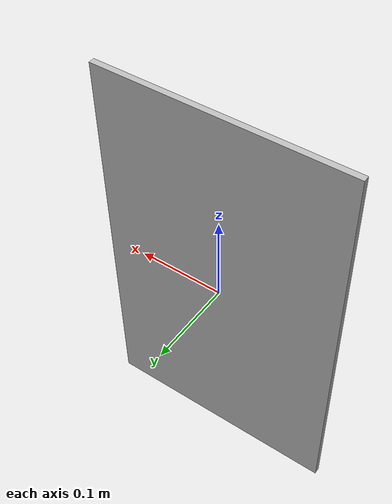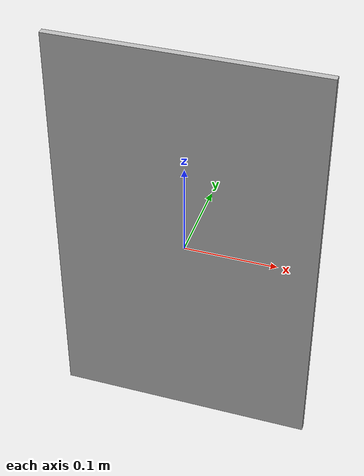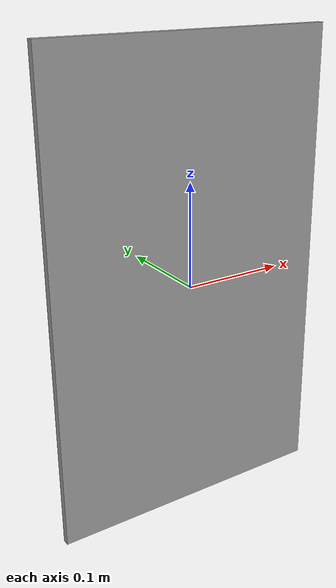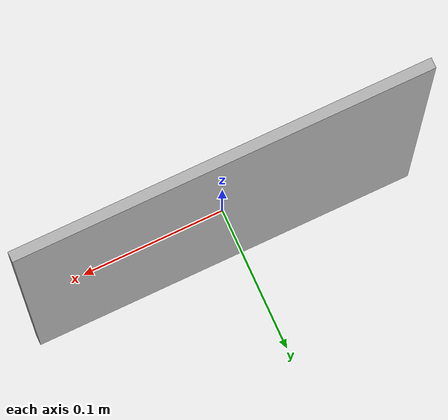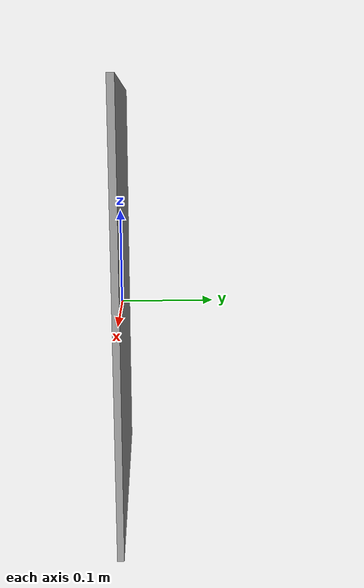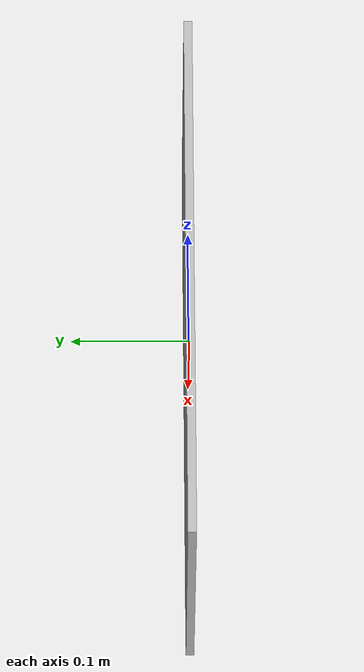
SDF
<?xml version="1.0" ?>
<sdf version="1.5">
  <model name="Zebra">
    <static>true</static>
    <link name="link">
      <pose>0 0 0 0 0 0</pose>
      <collision name="collision">
        <geometry>
          <box>
            <size>.2846 0.007 .4602</size>
          </box>
        </geometry>
      </collision>
      <visual name="visual">
        <cast_shadows>false</cast_shadows>
        <geometry>
          <box>
            <size>.2846 0.007 .460</size>
          </box>
        </geometry>
        <material>
          <script>
            <uri>model://Zebra/materials/scripts</uri>
            <uri>model://Zebra/materials/textures</uri>
            <name>vrc/Zebra</name>
          </script>
        </material>
      </visual>
    </link>
  </model>
</sdf>
